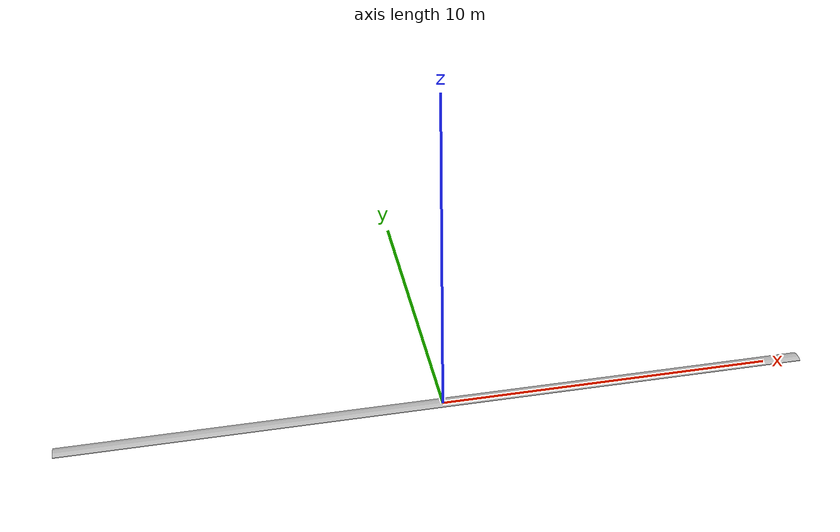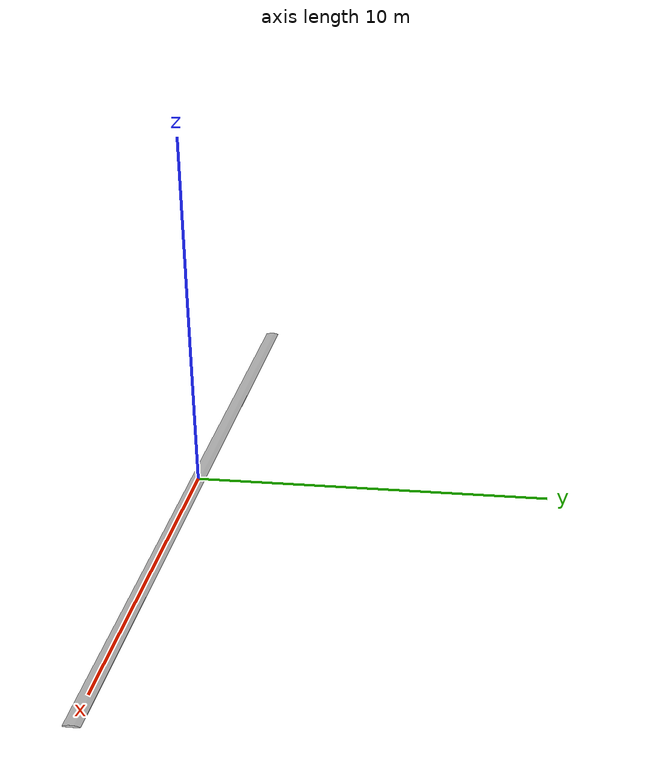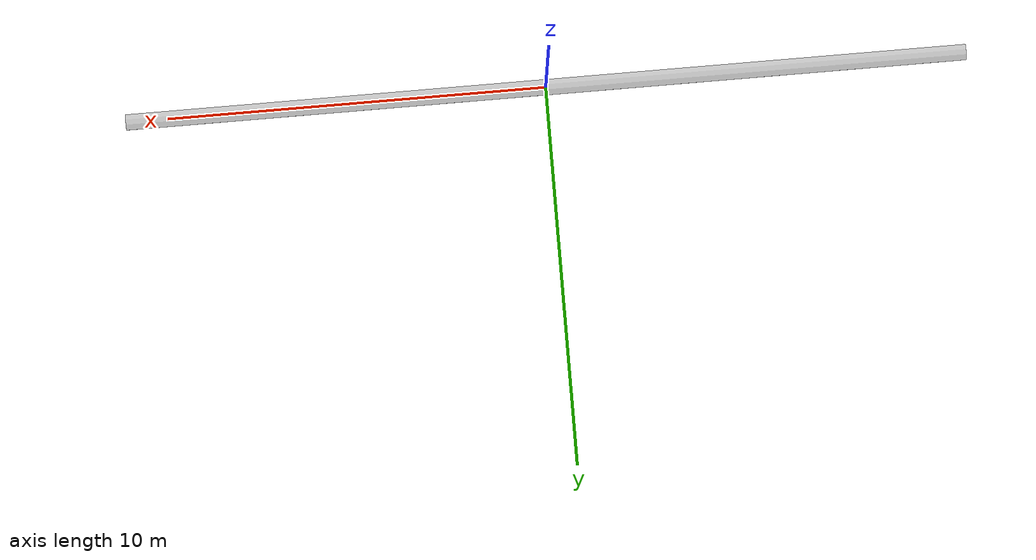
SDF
<?xml version="1.0" ?>
<sdf version="1.6">
  <model name="aws_robomaker_warehouse_Roadblock_01">
    <link name="link">
      <inertial>
        <mass>10</mass>
        <inertia>
          <ixx>0.144</ixx>
          <ixy>0</ixy>
          <ixz>0</ixz>
          <iyy>411.420</iyy>
          <iyz>0</iyz>
          <izz>411.559</izz>
        </inertia>
      </inertial>
      <collision name="collision">
        <geometry>
          <mesh>
            <uri>file://models/aws_robomaker_warehouse_Roadblock_01/meshes/aws_robomaker_warehouse_Roadblock_01_collision.DAE</uri>
            <scale>1 1 1</scale>
          </mesh>
        </geometry>
		<surface>
          <friction>
            <ode>
              <mu>0.5</mu>
              <mu2>0.5</mu2>
              <fdir1>0 0 0</fdir1>
              <slip1>0</slip1>
              <slip2>0</slip2>
            </ode>
        </friction>
          </surface>
      </collision>
      <visual name="visual">
	    <geometry>
          <mesh>
            <uri>file://models/aws_robomaker_warehouse_Roadblock_01/meshes/aws_robomaker_warehouse_Roadblock_01_visual.DAE</uri>
          </mesh>
        </geometry>
      <meta> <layer> 1 </layer></meta>
</visual>
    </link>
<static>1</static>
  </model>
</sdf>
